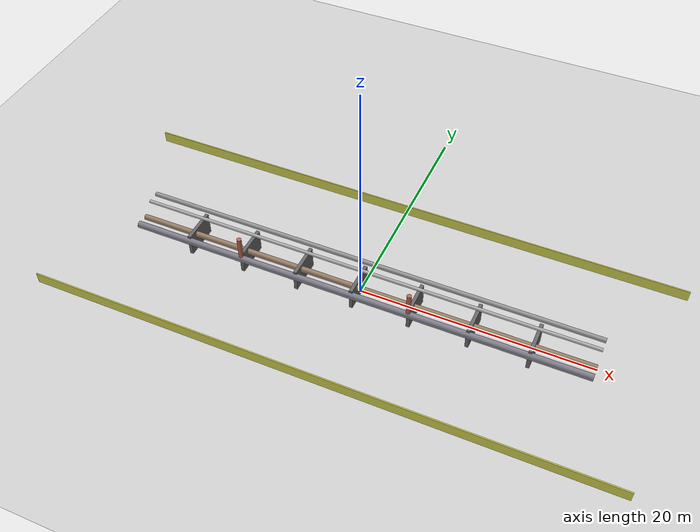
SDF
<?xml version="1.0" ?>
<sdf version="1.6">
  <world name="pipeline_above_ground">

    <!-- Physics -->
    <physics name="default_physics" default="0" type="ode">
      <max_step_size>0.004</max_step_size>
      <real_time_factor>1.0</real_time_factor>
      <real_time_update_rate>250</real_time_update_rate>
    </physics>

    <!-- Standard scene -->
    <scene>
      <ambient>0.4 0.4 0.4 1</ambient>
      <background>0.7 0.7 0.7 1</background>
      <shadows>0</shadows>
      <grid>true</grid>
    </scene>

    <!-- Sun -->
    <light name="sun" type="directional">
      <cast_shadows>0</cast_shadows>
      <pose>0 0 10 0 0 0</pose>
      <diffuse>0.8 0.8 0.8 1</diffuse>
      <specular>0.2 0.2 0.2 1</specular>
      <direction>-0.3 0.4 -1.0</direction>
    </light>

    <!-- Ground plane (concrete-colored) -->
    <model name="ground_plane">
      <static>true</static>
      <link name="link">
        <collision name="collision">
          <geometry>
            <plane>
              <normal>0 0 1</normal>
              <size>60 30</size>
            </plane>
          </geometry>
        </collision>
        <visual name="visual">
          <geometry>
            <plane>
              <normal>0 0 1</normal>
              <size>60 30</size>
            </plane>
          </geometry>
          <material>
            <script>
              <uri>file:///home/evg/field_robots_lab/install/field_robots_worlds/share/field_robots_worlds/materials/scripts/pipeline_materials.material</uri>
              <uri>file:///home/evg/field_robots_lab/install/field_robots_worlds/share/field_robots_worlds/materials/textures</uri>
              <name>PipelineWorlds/DirtGround</name>
            </script>
          </material>
        </visual>
      </link>
    </model>

    <!-- Pipeline section: 4 main horizontal pipes on supports          -->
    <!-- Layout: pipes run along X axis from x=-20 to x=20 (40m)        -->

    <!-- Main pipe 1 (lower, large diameter) -->
    <model name="pipe_main_1">
      <static>true</static>
      <pose>0 -2 1.5 0 1.5708 0</pose>
      <link name="link">
        <collision name="collision">
          <geometry>
            <cylinder>
              <radius>0.3</radius>
              <length>40</length>
            </cylinder>
          </geometry>
        </collision>
        <visual name="visual">
          <geometry>
            <cylinder>
              <radius>0.3</radius>
              <length>40</length>
            </cylinder>
          </geometry>
          <material>
            <ambient>0.4 0.4 0.45 1</ambient>
            <diffuse>0.5 0.5 0.55 1</diffuse>
          </material>
        </visual>
      </link>
    </model>

    <!-- Main pipe 2 -->
    <model name="pipe_main_2">
      <static>true</static>
      <pose>0 -1 1.5 0 1.5708 0</pose>
      <link name="link">
        <collision name="collision">
          <geometry>
            <cylinder>
              <radius>0.25</radius>
              <length>40</length>
            </cylinder>
          </geometry>
        </collision>
        <visual name="visual">
          <geometry>
            <cylinder>
              <radius>0.25</radius>
              <length>40</length>
            </cylinder>
          </geometry>
          <material>
            <ambient>0.5 0.4 0.3 1</ambient>
            <diffuse>0.6 0.5 0.4 1</diffuse>
          </material>
        </visual>
      </link>
    </model>

    <!-- Main pipe 3 (smaller, upper level) -->
    <model name="pipe_main_3">
      <static>true</static>
      <pose>0 0 2.5 0 1.5708 0</pose>
      <link name="link">
        <collision name="collision">
          <geometry>
            <cylinder>
              <radius>0.15</radius>
              <length>40</length>
            </cylinder>
          </geometry>
        </collision>
        <visual name="visual">
          <geometry>
            <cylinder>
              <radius>0.15</radius>
              <length>40</length>
            </cylinder>
          </geometry>
          <material>
            <ambient>0.6 0.6 0.6 1</ambient>
            <diffuse>0.7 0.7 0.7 1</diffuse>
          </material>
        </visual>
      </link>
    </model>

    <!-- Main pipe 4 -->
    <model name="pipe_main_4">
      <static>true</static>
      <pose>0 1 2.5 0 1.5708 0</pose>
      <link name="link">
        <collision name="collision">
          <geometry>
            <cylinder>
              <radius>0.2</radius>
              <length>40</length>
            </cylinder>
          </geometry>
        </collision>
        <visual name="visual">
          <geometry>
            <cylinder>
              <radius>0.2</radius>
              <length>40</length>
            </cylinder>
          </geometry>
          <material>
            <ambient>0.5 0.5 0.5 1</ambient>
            <diffuse>0.6 0.6 0.6 1</diffuse>
          </material>
        </visual>
      </link>
    </model>

    <!-- Support structures: vertical pillars every 5 meters             -->

    <!-- Support pillars at x = -15, -10, -5, 0, 5, 10, 15 -->
    <model name="support_n15">
      <static>true</static>
      <pose>-15 -0.5 1.0 0 0 0</pose>
      <link name="link">
        <collision name="collision">
          <geometry><box><size>0.3 3 2</size></box></geometry>
        </collision>
        <visual name="visual">
          <geometry><box><size>0.3 3 2</size></box></geometry>
          <material>
            <ambient>0.3 0.3 0.3 1</ambient>
            <diffuse>0.4 0.4 0.4 1</diffuse>
          </material>
        </visual>
      </link>
    </model>

    <model name="support_n10">
      <static>true</static>
      <pose>-10 -0.5 1.0 0 0 0</pose>
      <link name="link">
        <collision name="collision">
          <geometry><box><size>0.3 3 2</size></box></geometry>
        </collision>
        <visual name="visual">
          <geometry><box><size>0.3 3 2</size></box></geometry>
          <material>
            <ambient>0.3 0.3 0.3 1</ambient>
            <diffuse>0.4 0.4 0.4 1</diffuse>
          </material>
        </visual>
      </link>
    </model>

    <model name="support_n5">
      <static>true</static>
      <pose>-5 -0.5 1.0 0 0 0</pose>
      <link name="link">
        <collision name="collision">
          <geometry><box><size>0.3 3 2</size></box></geometry>
        </collision>
        <visual name="visual">
          <geometry><box><size>0.3 3 2</size></box></geometry>
          <material>
            <ambient>0.3 0.3 0.3 1</ambient>
            <diffuse>0.4 0.4 0.4 1</diffuse>
          </material>
        </visual>
      </link>
    </model>

    <model name="support_0">
      <static>true</static>
      <pose>0 -0.5 1.0 0 0 0</pose>
      <link name="link">
        <collision name="collision">
          <geometry><box><size>0.3 3 2</size></box></geometry>
        </collision>
        <visual name="visual">
          <geometry><box><size>0.3 3 2</size></box></geometry>
          <material>
            <ambient>0.3 0.3 0.3 1</ambient>
            <diffuse>0.4 0.4 0.4 1</diffuse>
          </material>
        </visual>
      </link>
    </model>

    <model name="support_p5">
      <static>true</static>
      <pose>5 -0.5 1.0 0 0 0</pose>
      <link name="link">
        <collision name="collision">
          <geometry><box><size>0.3 3 2</size></box></geometry>
        </collision>
        <visual name="visual">
          <geometry><box><size>0.3 3 2</size></box></geometry>
          <material>
            <ambient>0.3 0.3 0.3 1</ambient>
            <diffuse>0.4 0.4 0.4 1</diffuse>
          </material>
        </visual>
      </link>
    </model>

    <model name="support_p10">
      <static>true</static>
      <pose>10 -0.5 1.0 0 0 0</pose>
      <link name="link">
        <collision name="collision">
          <geometry><box><size>0.3 3 2</size></box></geometry>
        </collision>
        <visual name="visual">
          <geometry><box><size>0.3 3 2</size></box></geometry>
          <material>
            <ambient>0.3 0.3 0.3 1</ambient>
            <diffuse>0.4 0.4 0.4 1</diffuse>
          </material>
        </visual>
      </link>
    </model>

    <model name="support_p15">
      <static>true</static>
      <pose>15 -0.5 1.0 0 0 0</pose>
      <link name="link">
        <collision name="collision">
          <geometry><box><size>0.3 3 2</size></box></geometry>
        </collision>
        <visual name="visual">
          <geometry><box><size>0.3 3 2</size></box></geometry>
          <material>
            <ambient>0.3 0.3 0.3 1</ambient>
            <diffuse>0.4 0.4 0.4 1</diffuse>
          </material>
        </visual>
      </link>
    </model>

    <!-- Valves and fittings (vertical pipes branching off)             -->

    <!-- Vertical valve at x=-10, branching from main pipe 1 -->
    <model name="valve_n10">
      <static>true</static>
      <pose>-10 -2 2.8 0 0 0</pose>
      <link name="link">
        <collision name="collision">
          <geometry>
            <cylinder>
              <radius>0.2</radius>
              <length>2.0</length>
            </cylinder>
          </geometry>
        </collision>
        <visual name="visual">
          <geometry>
            <cylinder>
              <radius>0.2</radius>
              <length>2.0</length>
            </cylinder>
          </geometry>
          <material>
            <ambient>0.6 0.3 0.2 1</ambient>
            <diffuse>0.7 0.4 0.3 1</diffuse>
          </material>
        </visual>
      </link>
    </model>

    <!-- Vertical valve at x=5 -->
    <model name="valve_p5">
      <static>true</static>
      <pose>5 -2 2.8 0 0 0</pose>
      <link name="link">
        <collision name="collision">
          <geometry>
            <cylinder>
              <radius>0.2</radius>
              <length>2.0</length>
            </cylinder>
          </geometry>
        </collision>
        <visual name="visual">
          <geometry>
            <cylinder>
              <radius>0.2</radius>
              <length>2.0</length>
            </cylinder>
          </geometry>
          <material>
            <ambient>0.6 0.3 0.2 1</ambient>
            <diffuse>0.7 0.4 0.3 1</diffuse>
          </material>
        </visual>
      </link>
    </model>

    <!-- Boundary fence (optional, marks operational zone)              -->

    <!-- Side rails at y=±10 for visual reference -->
    <model name="fence_north">
      <static>true</static>
      <pose>0 10 0.5 0 0 0</pose>
      <link name="link">
        <visual name="visual">
          <geometry>
            <box>
              <size>50 0.1 1.0</size>
            </box>
          </geometry>
          <material>
            <ambient>0.7 0.7 0.2 1</ambient>
            <diffuse>0.8 0.8 0.3 1</diffuse>
          </material>
        </visual>
      </link>
    </model>

    <model name="fence_south">
      <static>true</static>
      <pose>0 -10 0.5 0 0 0</pose>
      <link name="link">
        <visual name="visual">
          <geometry>
            <box>
              <size>50 0.1 1.0</size>
            </box>
          </geometry>
          <material>
            <ambient>0.7 0.7 0.2 1</ambient>
            <diffuse>0.8 0.8 0.3 1</diffuse>
          </material>
        </visual>
      </link>
    </model>

  </world>
</sdf>
